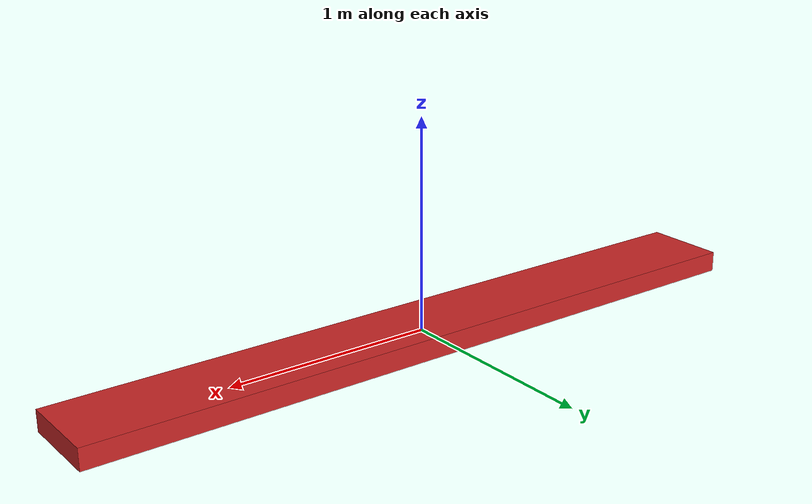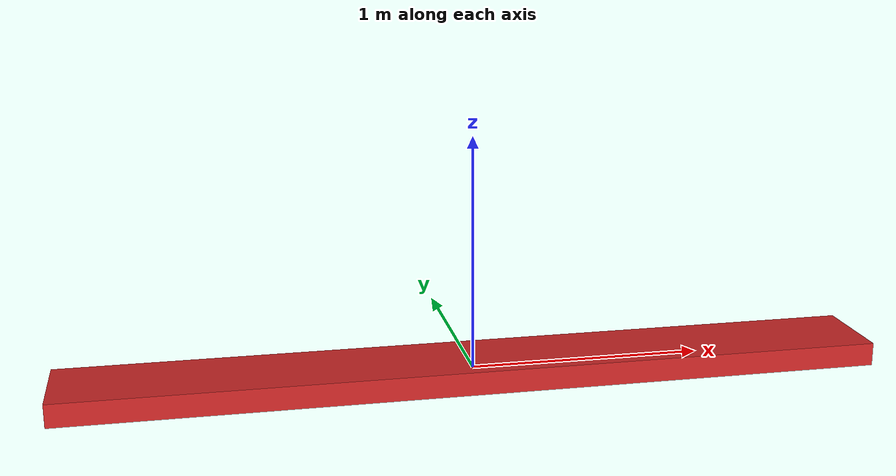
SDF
<?xml version='1.0'?>
<sdf version='1.6'>
  <model name="redline">
    <static>true</static>
    <pose>0 0 0 0 0 0</pose>

    <link name="redline">
      <pose>0 0 0 0 0 0</pose>
      <visual name="redline">
      <material>
            <script>
                <uri>model://redline/materials/scripts</uri>
                <uri>model://redline/materials/textures</uri>
                <name>vrc/redline</name>
            </script>
        </material>
        <geometry>
          <box>
            <size>3.5 0.4 0.1</size>
          </box>
        </geometry>
      </visual>
    </link>

  </model>
</sdf>
